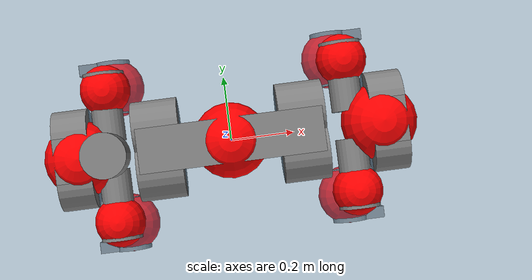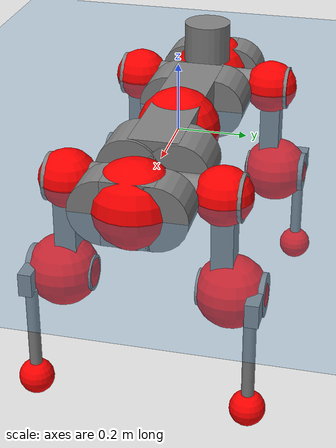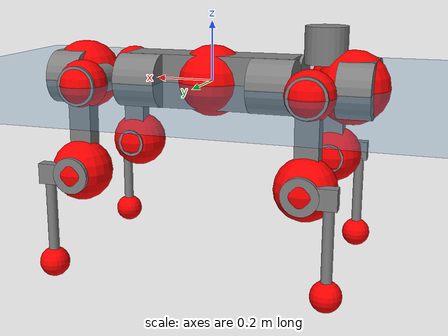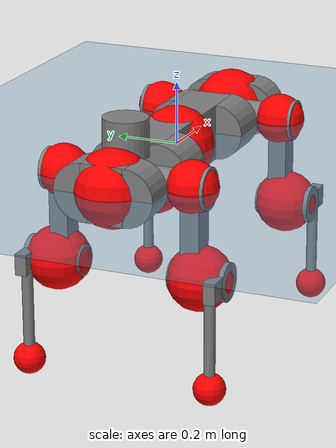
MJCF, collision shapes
<mujoco model="anymal_c">
  <compiler angle="radian" assetdir="assets" balanceinertia="true" inertiafromgeom="false"/>

  <option timestep="0.005" density="1.2" viscosity="2e-05"/>

  <size nkey="1"/>

  <visual>
    <quality shadowsize="8192"/>
    <map shadowclip="0.5"/>
  </visual>

  <default>
    <default class="/">
      <material specular="0" shininess="0.25"/>
      <geom contype="0" conaffinity="0" group="1" solref="-1000 -80"/>
      <site size="0.01 0.005 0.005" group="5"/>
      <general forcelimited="true" forcerange="-80 80" biastype="affine" gainprm="80" biasprm="0 -80 -2"/>
      <default class="anymal_c">
        <joint armature="0.01" damping="0.01" frictionloss="0.1"/>
        <default class="visual">
          <geom type="mesh" group="2"/>
          <default class="visual_zflip"/>
        </default>
        <default class="collision">
          <geom type="cylinder" group="3"/>
          <default class="foot">
            <geom size="0.03 0 0" type="sphere" condim="6" priority="1" friction="0.8 0.02 0.01" solimp="0.015 1 0.03"/>
          </default>
        </default>
      </default>
      <default class="reward_collision_sphere">
        <geom group="5" rgba="1 0 0 1"/>
      </default>
    </default>
  </default>

  <asset>
    <texture type="skybox" colorspace="auto" name="//unnamed_texture_0" builtin="gradient" rgb1="0.95 0.95 0.95" rgb2="0.95 0.95 0.95" width="100" height="600"/>
    <texture type="2d" colorspace="auto" name="texplane" builtin="checker" rgb1="0.345 0.575 0.748" rgb2="0.345 0.575 0.748" markrgb="1 1 1" width="512" height="512"/>
    <texture type="2d" colorspace="linear" name="base" file="base.png"/>
    <texture type="2d" colorspace="linear" name="top_shell" file="top_shell.png"/>
    <texture type="2d" colorspace="linear" name="bottom_shell" file="bottom_shell.png"/>
    <texture type="2d" colorspace="linear" name="remote" file="remote.png"/>
    <texture type="2d" colorspace="linear" name="hatch" file="hatch.png"/>
    <texture type="2d" colorspace="linear" name="handle" file="handle.png"/>
    <texture type="2d" colorspace="linear" name="face" file="face.png"/>
    <texture type="2d" colorspace="linear" name="battery" file="battery.png"/>
    <texture type="2d" colorspace="linear" name="lidar_cage" file="lidar_cage.png"/>
    <texture type="2d" colorspace="linear" name="depth_camera" file="depth_camera.png"/>
    <texture type="2d" colorspace="linear" name="wide_angle_camera" file="wide_angle_camera.png"/>
    <texture type="2d" colorspace="linear" name="lidar" file="lidar.png"/>
    <texture type="2d" colorspace="linear" name="drive" file="drive.png"/>
    <texture type="2d" colorspace="linear" name="hip_l" file="hip_l.png"/>
    <texture type="2d" colorspace="linear" name="shank_l" file="shank_l.png"/>
    <texture type="2d" colorspace="linear" name="foot" file="foot.png"/>
    <texture type="2d" colorspace="linear" name="thigh" file="thigh.png"/>
    <texture type="2d" colorspace="linear" name="shank_r" file="shank_r.png"/>
    <texture type="2d" colorspace="linear" name="hip_r" file="hip_r.png"/>
    <material name="MatPlane" class="/" texture="texplane" texuniform="true" texrepeat="2 2" specular="0.9" shininess="0.5"/>
    <material name="black_plastic" class="/" rgba="0.007 0.007 0.007 1"/>
    <material name="green" class="/" rgba="0.052 0.178 0.033 1"/>
    <material name="red" class="/" rgba="0.178 0.006 0.005 1"/>
    <material name="yellow" class="/" rgba="0.178 0.119 0.006 1"/>
    <material name="lwl" class="/" rgba="0.8 0.8 0.8 1"/>
    <material name="base" class="/" texture="base"/>
    <material name="top_shell" class="/" texture="top_shell"/>
    <material name="bottom_shell" class="/" texture="bottom_shell"/>
    <material name="hip_l" class="/" texture="hip_l"/>
    <material name="thigh" class="/" texture="thigh"/>
    <material name="shank_l" class="/" texture="shank_l"/>
    <material name="foot" class="/" texture="foot"/>
    <material name="hip_r" class="/" texture="hip_r"/>
    <material name="shank" class="/" texture="shank_r"/>
    <material name="hatch" class="/" texture="hatch"/>
    <material name="remote" class="/" texture="remote"/>
    <material name="handle" class="/" texture="handle"/>
    <material name="face" class="/" texture="face"/>
    <material name="depth_camera" class="/" texture="depth_camera"/>
    <material name="wide_angle_camera" class="/" texture="wide_angle_camera"/>
    <material name="battery" class="/" texture="battery"/>
    <material name="lidar_cage" class="/" texture="lidar_cage"/>
    <material name="lidar" class="/" texture="lidar"/>
    <material name="drive" class="/" texture="drive"/>
    <mesh name="base_0" class="/" file="base_0.obj"/>
    <mesh name="base_1" class="/" file="base_1.obj"/>
    <mesh name="base_2" class="/" file="base_2.obj"/>
    <mesh name="base_3" class="/" file="base_3.obj"/>
    <mesh name="base_4" class="/" file="base_4.obj"/>
    <mesh name="base_5" class="/" file="base_5.obj"/>
    <mesh name="top_shell" class="/" file="top_shell.obj"/>
    <mesh name="bottom_shell" class="/" file="bottom_shell.obj"/>
    <mesh name="remote" class="/" file="remote.obj"/>
    <mesh name="handle" class="/" file="handle.obj"/>
    <mesh name="face" class="/" file="face.obj"/>
    <mesh name="wide_angle_camera" class="/" file="wide_angle_camera.obj"/>
    <mesh name="depth_camera" class="/" file="depth_camera.obj"/>
    <mesh name="battery" class="/" file="battery.obj"/>
    <mesh name="lidar_cage" class="/" file="lidar_cage.obj"/>
    <mesh name="lidar" class="/" file="lidar.obj"/>
    <mesh name="drive" class="/" file="drive.obj"/>
    <mesh name="hip_l" class="/" file="hip_l.obj"/>
    <mesh name="thigh" class="/" file="thigh.obj"/>
    <mesh name="shank_l" class="/" file="shank_l.obj"/>
    <mesh name="foot" class="/" file="foot.obj"/>
    <mesh name="hip_r" class="/" file="hip_r.obj"/>
    <mesh name="hatch" class="/" file="hatch.obj"/>
    <mesh name="shank_r" class="/" file="shank_r.obj"/>
  </asset>

  <worldbody>
    <geom name="floor" class="/" size="100 100 0.125" type="plane" group="0" material="MatPlane"/>
    <light name="toplight_shadow" class="/" pos="0 0 5" dir="0.0990148 0.0990148 -0.990148" type="directional" ambient="0.04 0.04 0.04" diffuse="0.55 0.55 0.55" specular="0.12 0.12 0.12"/>
    <light name="toplight_fill" class="/" pos="0 0 5" dir="0.0990148 0.0990148 -0.990148" type="directional" castshadow="false" ambient="0.04 0.04 0.04" diffuse="0.3 0.3 0.3" specular="0.08 0.08 0.08"/>
    <body name="trunk" childclass="anymal_c" pos="-0.00185548 -3.28802e-05 0.000986297" quat="1 -0.000258746 2.6223e-05 0.000296423">
      <inertial pos="0.000345358 -0.000626828 0.0485679" quat="0.500219 0.501669 0.502032 0.496057" mass="19.6265" diaginertia="0.851964 0.54996 0.219484"/>
      <joint name="//unnamed_joint_0" type="free" armature="0" damping="0" frictionloss="0"/>
      <geom name="//unnamed_geom_1" class="visual" material="green" mesh="base_0"/>
      <geom name="//unnamed_geom_2" class="visual" material="yellow" mesh="base_1"/>
      <geom name="//unnamed_geom_3" class="visual" material="red" mesh="base_2"/>
      <geom name="//unnamed_geom_4" class="visual" material="black_plastic" mesh="base_3"/>
      <geom name="//unnamed_geom_5" class="visual" material="lwl" mesh="base_4"/>
      <geom name="//unnamed_geom_6" class="visual" material="base" mesh="base_5"/>
      <geom name="trunk_1" class="collision" size="0.292906 0.0707014 0.0909018" type="box"/>
      <geom name="trunk_2" class="collision" size="0.0909018 0.0732265" pos="0.229961 0.0681855 0" quat="0.707107 0 0.707107 0"/>
      <geom name="trunk_3" class="collision" size="0.0909018 0.0732265" pos="-0.229961 0.0681855 0" quat="0.707107 0 0.707107 0"/>
      <geom name="trunk_4" class="collision" size="0.0909018 0.0732265" pos="0.229961 -0.0681855 0" quat="0.707107 0 0.707107 0"/>
      <geom name="trunk_5" class="collision" size="0.0909018 0.0732265" pos="-0.229961 -0.0681855 0" quat="0.707107 0 0.707107 0"/>
      <geom name="//unnamed_geom_12" class="visual" material="top_shell" mesh="top_shell"/>
      <geom name="//unnamed_geom_13" class="visual" material="bottom_shell" mesh="bottom_shell"/>
      <geom name="//unnamed_geom_14" class="visual" material="remote" mesh="remote"/>
      <geom name="//unnamed_geom_15" class="visual" material="handle" mesh="handle"/>
      <geom name="//unnamed_geom_16" class="visual" pos="0.438248 0 0" quat="1 0 0 0" material="face" mesh="face"/>
      <geom name="trunk_6" class="collision" size="0.0555511 0.0707014 0.0909018" pos="0.496399 0 0" type="box"/>
      <geom name="//unnamed_geom_18" class="collision" size="0.0909018 0.0555511" pos="0.496399 0.0681855 0" quat="0.707107 0 0.707107 0"/>
      <geom name="//unnamed_geom_19" class="collision" size="0.0909018 0.0555511" pos="0.496399 -0.0681855 0" quat="0.707107 0 0.707107 0"/>
      <geom name="//unnamed_geom_20" class="visual" pos="0.488097 0 -0.0287163" quat="0.965926 0 0.258819 0" material="depth_camera" mesh="depth_camera"/>
      <geom name="//unnamed_geom_21" class="visual" pos="0.542391 0 0.0149504" material="wide_angle_camera" mesh="wide_angle_camera"/>
      <geom name="//unnamed_geom_22" class="visual_zflip" pos="-0.438248 0 0" quat="0 0 0 1" material="face" mesh="face"/>
      <geom name="trunk_7" class="collision" size="0.0555511 0.0707014 0.0909018" pos="-0.496399 0 0" quat="0 0 0 1" type="box"/>
      <geom name="//unnamed_geom_24" class="collision" size="0.0909018 0.0555511" pos="-0.496399 -0.0681855 0" quat="0 -0.707107 0 0.707107"/>
      <geom name="//unnamed_geom_25" class="collision" size="0.0909018 0.0555511" pos="-0.496399 0.0681855 0" quat="0 -0.707107 0 0.707107"/>
      <geom name="//unnamed_geom_26" class="visual" pos="-0.488097 0 -0.0287163" quat="0 -0.258819 0 0.965926" material="depth_camera" mesh="depth_camera"/>
      <geom name="//unnamed_geom_27" class="visual_zflip" pos="-0.542391 0 0.0149504" quat="0 0 0 1" material="wide_angle_camera" mesh="wide_angle_camera"/>
      <geom name="//unnamed_geom_28" class="visual" material="battery" mesh="battery"/>
      <geom name="//unnamed_geom_29" class="visual" pos="0 0.0733837 0.0294573" quat="0.683013 -0.183013 0.183013 0.683013" material="depth_camera" mesh="depth_camera"/>
      <geom name="//unnamed_geom_30" class="visual" pos="0 -0.0733837 0.0294573" quat="0.683013 0.183013 0.183013 -0.683013" material="depth_camera" mesh="depth_camera"/>
      <geom name="//unnamed_geom_31" class="visual" pos="-0.384855 0 0.0734037" quat="1 0 0 0" material="lidar_cage" mesh="lidar_cage"/>
      <geom name="trunk_8" class="collision" size="0.0707014 0.0606012" pos="-0.384855 0 0.133325"/>
      <geom name="//unnamed_geom_33" class="visual" pos="-0.384855 -3.26927e-05 0.142014" quat="0.707107 0 0 -0.707107" material="lidar" mesh="lidar"/>
      <geom name="//unnamed_geom_34" class="visual" pos="0.317082 0.101313 -4.24534e-10" quat="0.258819 0.965926 0 0" material="drive" mesh="drive"/>
      <geom name="//unnamed_geom_35" class="visual" pos="0.317082 -0.101313 4.24534e-10" quat="0.258819 -0.965926 0 0" material="drive" mesh="drive"/>
      <geom name="//unnamed_geom_36" class="visual" pos="-0.317082 0.101313 4.24534e-10" quat="0 0 0.965926 -0.258819" material="drive" mesh="drive"/>
      <geom name="//unnamed_geom_37" class="visual" pos="-0.317082 -0.101313 -4.24534e-10" quat="0 0 -0.965926 -0.258819" material="drive" mesh="drive"/>
      <geom name="//unnamed_geom_38" class="visual" pos="0.122646 0 0.0729043" quat="1 0 0 0" material="hatch" mesh="hatch"/>
      <geom name="//unnamed_geom_39" class="reward_collision_sphere" size="0.121202"/>
      <geom name="//unnamed_geom_40" class="reward_collision_sphere" size="0.121202" pos="0.475782 0 0"/>
      <geom name="//unnamed_geom_41" class="reward_collision_sphere" size="0.121202" pos="-0.475782 0 0"/>
      <site name="imu" pos="0.261497 0.00351224 0.0485536" size="0.0101002"/>
      <camera name="track" pos="0 -1.94816 0" quat="0.707107 0.707107 0 0" mode="trackcom"/>
      <camera name="ego_camera" pos="0.475782 0 -0.0399476" quat="-0.5 -0.5 0.5 0.5"/>
      <body name="LF_HIP" pos="0.318365 0.102275 -0.00129023" quat="0.258207 0.966089 0.000617994 -0.000286815">
        <inertial pos="0.0578857 -0.0137386 -0.00735809" quat="-0.127902 0.709854 -0.135215 0.679312" mass="2.88986" diaginertia="0.00781651 0.00428965 0.00328734"/>
        <joint name="LF_HAA" pos="0 0 0" axis="0.999998 0.00133462 -0.00118613" range="-0.722398 0.465113" armature="0.0103508" damping="0.0112199" frictionloss="0.0958729"/>
        <geom name="//unnamed_geom_42" class="visual" pos="0 -2.49734e-05 4.10186e-06" quat="0.258819 -0.965926 0 0" material="hip_l" mesh="hip_l"/>
        <geom name="//unnamed_geom_43" class="visual" pos="0.0633319 -0.0756531 -0.0438604" quat="0.183013 -0.683013 0.683013 0.183013" material="drive" mesh="drive"/>
        <geom name="//unnamed_geom_44" class="collision" size="0.050501 0.0707014" pos="0.0633319 -0.0116498 -0.00689595" quat="-0.353553 -0.612372 0.612372 -0.353553"/>
        <body name="LF_THIGH" pos="0.0632909 -0.0712444 -0.0422589" quat="0.18308 -0.683003 0.682999 0.183032">
          <inertial pos="0.034675 4.58272e-06 -0.243893" quat="0.993051 -0.00564025 -0.0809615 0.0852233" mass="3.18213" diaginertia="0.0398203 0.0261242 0.00421567"/>
          <joint name="LF_HFE" pos="0 0 0" axis="0.999995 -0.00126284 -0.0027812" stiffness="0.0118808" range="-3.16223 3.14637" armature="0.0102736" damping="0" frictionloss="0.0963765"/>
          <geom name="//unnamed_geom_45" class="visual" pos="0.00165564 2.6089e-06 0" quat="0.707107 0 0 -0.707107" material="thigh" mesh="thigh"/>
          <geom name="//unnamed_geom_46" class="collision" size="0.0656513 0.0404008" pos="0.0422917 0 0" quat="0.5 0.5 -0.5 -0.5"/>
          <geom name="//unnamed_geom_47" class="collision" size="0.0378758 0.0303006 0.14273" pos="0.0317188 0 -0.141129" quat="0.707107 0 0 -0.707107" type="box"/>
          <geom name="//unnamed_geom_48" class="visual" pos="0.106047 0 -0.284626" quat="1 0 0 0" material="drive" mesh="drive"/>
          <geom name="//unnamed_geom_49" class="collision" size="0.050501 0.0707014" pos="0.032036 0 -0.284626" quat="0.707107 0 0.707107 0"/>
          <geom name="//unnamed_geom_50" class="reward_collision_sphere" size="0.0808016" pos="0.0264323 0 0"/>
          <body name="LF_SHANK" pos="0.106279 -9.30821e-05 -0.285386" quat="1 -0.000166326 -0.000101313 -5.54271e-05">
            <inertial pos="0.00520353 -0.0604502 -0.080947" quat="0.992413 -0.118931 -0.00164635 -0.0311216" mass="0.601776" diaginertia="0.0135491 0.00800457 0.00111382"/>
            <joint name="LF_KFE" pos="0 0 0" axis="0.99999 0.00307542 -0.00331334" range="-3.14795 3.11891" armature="0.0105427" damping="0.00930711" frictionloss="0.0983663"/>
            <geom name="//unnamed_geom_51" class="visual" pos="0.000539868 0.0028786 0" quat="0.707107 0 0 -0.707107" material="shank_l" mesh="shank_l"/>
            <geom name="LF_kfe_act" class="collision" size="0.0606012 0.0202004" pos="0.0211459 0 0" quat="0.5 0.5 -0.5 -0.5"/>
            <geom name="//unnamed_geom_53" class="collision" size="0.0580752 0.0340882 0.0191904" pos="0.0211459 -0.0560086 0" quat="0.5 0.5 -0.5 -0.5" type="box"/>
            <geom name="//unnamed_geom_54" class="visual" pos="0.0137975 -0.0847426 -0.337527" quat="0.382683 0 0 -0.92388" material="foot" mesh="foot"/>
            <geom name="LF_calf" class="collision" size="0.0176754 0.142667" pos="0.0137977 -0.0856702 -0.168764" quat="0.707107 0 0 -0.707107"/>
            <geom name="LF_foot" class="foot" size="0.0293868" pos="0.0137977 -0.0856702 -0.315057" quat="0.707107 0 0 -0.707107"/>
            <geom name="//unnamed_geom_57" class="reward_collision_sphere" size="0.101002" pos="-0.0528647 0 0"/>
            <geom name="//unnamed_geom_58" class="reward_collision_sphere" size="0.050501" pos="0.0137977 -0.0856702 -0.315057"/>
            <site name="LF_foot" class="foot" pos="0.0137977 -0.0856702 -0.315057" quat="0.707107 0 0 -0.707107" size="0.0101002"/>
          </body>
        </body>
      </body>
      <body name="RF_HIP" pos="0.317387 -0.100547 0.000974516" quat="0.258474 -0.966018 -0.00023622 -0.000249222">
        <inertial pos="0.0607664 0.014537 -0.00848003" quat="0.135493 0.679176 0.127675 0.709972" mass="2.94801" diaginertia="0.00769594 0.00431472 0.00328366"/>
        <joint name="RF_HAA" pos="0 0 0" axis="0.999998 -0.000222129 0.0022217" range="-0.506972 0.715012" armature="0.00907808" damping="0.00977962" frictionloss="0.110678"/>
        <geom name="//unnamed_geom_59" class="visual" pos="0 2.49732e-05 4.10185e-06" quat="0.258819 0.965926 0 0" material="hip_r" mesh="hip_r"/>
        <geom name="//unnamed_geom_60" class="visual" pos="0.0633319 0.0756531 -0.0438604" quat="0.183013 0.683013 0.683013 -0.183013" material="drive" mesh="drive"/>
        <geom name="//unnamed_geom_61" class="collision" size="0.050501 0.0707014" pos="0.0633319 0.0116498 -0.00689595" quat="-0.353553 0.612372 0.612372 0.353553"/>
        <body name="RF_THIGH" pos="0.0641329 0.0704518 -0.0413181" quat="0.183591 0.682628 0.683243 -0.183013">
          <inertial pos="0.0325291 -0.00214013 -0.244556" quat="0.992791 -0.00518486 -0.0786465 0.0902954" mass="3.11458" diaginertia="0.0404403 0.026851 0.00416612"/>
          <joint name="RF_HFE" pos="0 0 0" axis="0.999987 -0.00114409 0.00506293" stiffness="0.00332227" range="-3.12807 3.15644" armature="0.0101812" damping="0.0103895" frictionloss="0.0958923"/>
          <geom name="//unnamed_geom_62" class="visual" pos="0.00165564 2.6089e-06 0" quat="0.707107 0 0 -0.707107" material="thigh" mesh="thigh"/>
          <geom name="//unnamed_geom_63" class="collision" size="0.0656513 0.0404008" pos="0.0422917 0 0" quat="0.5 0.5 0.5 0.5"/>
          <geom name="//unnamed_geom_64" class="collision" size="0.0378758 0.0303006 0.14273" pos="0.0317188 0 -0.141129" quat="0.707107 0 0 0.707107" type="box"/>
          <geom name="//unnamed_geom_65" class="visual" pos="0.106047 0 -0.284626" quat="1 0 0 0" material="drive" mesh="drive"/>
          <geom name="//unnamed_geom_66" class="collision" size="0.050501 0.0707014" pos="0.032036 0 -0.284626" quat="0.707107 0 0.707107 0"/>
          <geom name="//unnamed_geom_67" class="reward_collision_sphere" size="0.0808016" pos="0.0264323 0 0"/>
          <body name="RF_SHANK" pos="0.105232 -0.000203679 -0.284156" quat="1 9.52673e-05 -0.000140491 5.9696e-05">
            <inertial pos="0.00516129 0.0598484 -0.0799377" quat="0.993199 0.113464 -0.00137376 0.0260877" mass="0.609772" diaginertia="0.0137625 0.00817264 0.00112276"/>
            <joint name="RF_KFE" pos="0 0 0" axis="0.999965 -0.00737666 0.00398621" range="-3.14534 3.12641" armature="0.0102142" damping="0.0048813" frictionloss="0.0994463"/>
            <geom name="//unnamed_geom_68" class="visual" pos="0.000539865 -0.0028786 0" quat="0.707107 0 0 0.707107" material="shank" mesh="shank_r"/>
            <geom name="RF_kfe_act" class="collision" size="0.0606012 0.0202004" pos="0.0211459 0 0" quat="0.5 0.5 0.5 0.5"/>
            <geom name="//unnamed_geom_70" class="collision" size="0.0580752 0.0340882 0.0191904" pos="0.0211459 0.0560086 0" quat="0.5 0.5 0.5 0.5" type="box"/>
            <geom name="//unnamed_geom_71" class="visual" pos="0.0137978 0.0847426 -0.337527" quat="0.382683 0 0 0.92388" material="foot" mesh="foot"/>
            <geom name="RF_calf" class="collision" size="0.0176754 0.142667" pos="0.0137977 0.0856702 -0.168764" quat="0.707107 0 0 0.707107"/>
            <geom name="RF_foot" class="foot" size="0.0301306" pos="0.0137977 0.0856702 -0.315057" quat="0.707107 0 0 0.707107"/>
            <geom name="//unnamed_geom_74" class="reward_collision_sphere" size="0.101002" pos="-0.0528647 0 0"/>
            <geom name="//unnamed_geom_75" class="reward_collision_sphere" size="0.050501" pos="0.0137977 0.0856702 -0.315057"/>
            <site name="RF_foot" class="foot" pos="0.0137977 0.0856702 -0.315057" quat="0.707107 0 0 0.707107" size="0.0101002"/>
          </body>
        </body>
      </body>
      <body name="LH_HIP" pos="-0.317012 0.100961 6.03313e-05" quat="-0.000391637 -0.000612758 0.96568 -0.259734">
        <inertial pos="0.0619489 0.0147971 -0.00788253" quat="0.135229 0.679026 0.127932 0.71012" mass="2.86042" diaginertia="0.00773279 0.00432591 0.00328143"/>
        <joint name="LH_HAA" pos="0 0 0" axis="1 7.03401e-05 0.000312266" range="-0.497123 0.732581" armature="0.0100729" damping="0.00930805" frictionloss="0.0961393"/>
        <geom name="//unnamed_geom_76" class="visual" pos="0 2.49732e-05 4.10185e-06" quat="-0.258819 -0.965926 0 0" material="hip_r" mesh="hip_r"/>
        <geom name="//unnamed_geom_77" class="visual" pos="0.0633319 0.0756531 -0.0438604" quat="0.183013 0.683013 0.683013 -0.183013" material="drive" mesh="drive"/>
        <geom name="//unnamed_geom_78" class="collision" size="0.050501 0.0707014" pos="0.0633319 0.0116498 -0.00689595" quat="-0.353553 0.612372 0.612372 0.353553"/>
        <body name="LH_THIGH" pos="0.0608285 0.0696644 -0.0419784" quat="0.183447 0.682783 0.683209 -0.182701">
          <inertial pos="0.0329193 -0.000371619 -0.245543" quat="0.992693 0.000529099 -0.0792777 0.0909671" mass="3.12104" diaginertia="0.03965 0.0259904 0.00411029"/>
          <joint name="LH_HFE" pos="0 0 0" axis="0.999998 -0.00215153 -0.000516964" stiffness="3.18727e-06" range="-3.15079 3.14459" armature="0.0101701" damping="0" frictionloss="0.105494"/>
          <geom name="//unnamed_geom_79" class="visual" pos="0.00165564 2.6089e-06 0" quat="0.707107 0 0 -0.707107" material="thigh" mesh="thigh"/>
          <geom name="//unnamed_geom_80" class="collision" size="0.0656513 0.0404008" pos="0.0422917 0 0" quat="0.5 0.5 -0.5 -0.5"/>
          <geom name="//unnamed_geom_81" class="collision" size="0.0378758 0.0303006 0.14273" pos="0.0317188 0 -0.141129" quat="0.707107 0 0 -0.707107" type="box"/>
          <geom name="//unnamed_geom_82" class="visual" pos="0.106047 0 -0.284626" quat="1 0 0 0" material="drive" mesh="drive"/>
          <geom name="//unnamed_geom_83" class="collision" size="0.050501 0.0707014" pos="0.032036 0 -0.284626" quat="0.707107 0 0.707107 0"/>
          <geom name="//unnamed_geom_84" class="reward_collision_sphere" size="0.0808016" pos="0.0264323 0 0"/>
          <body name="LH_SHANK" pos="0.104887 -0.000140999 -0.285578" quat="1 6.09314e-05 -5.0342e-05 -5.67381e-05">
            <inertial pos="0.00576733 0.0597035 -0.0812171" quat="0.992925 0.115914 -0.000655048 0.0257418" mass="0.609205" diaginertia="0.0134051 0.00808644 0.00111216"/>
            <joint name="LH_KFE" pos="0 0 0" axis="0.999991 0.00028624 -0.00422858" range="-3.13379 3.13902" armature="0.0104958" damping="0" frictionloss="0.102672"/>
            <geom name="//unnamed_geom_85" class="visual" pos="0.000539865 -0.0028786 0" quat="-0.707107 0 0 -0.707107" material="shank" mesh="shank_r"/>
            <geom name="LH_kfe_act" class="collision" size="0.0606012 0.0202004" pos="0.0211459 0 0" quat="0.5 0.5 -0.5 -0.5"/>
            <geom name="//unnamed_geom_87" class="collision" size="0.0580752 0.0340882 0.0191904" pos="0.0211459 0.0560086 0" quat="0.5 0.5 -0.5 -0.5" type="box"/>
            <geom name="//unnamed_geom_88" class="visual" pos="0.0137978 0.0847426 -0.337527" quat="-0.382683 0 0 -0.92388" material="foot" mesh="foot"/>
            <geom name="LH_calf" class="collision" size="0.0176754 0.142667" pos="0.0137977 0.0856702 -0.168764" quat="0.707107 0 0 -0.707107"/>
            <geom name="LH_foot" class="foot" size="0.0313798" pos="0.0137977 0.0856702 -0.315057" quat="0.707107 0 0 -0.707107"/>
            <geom name="//unnamed_geom_91" class="reward_collision_sphere" size="0.101002" pos="-0.0528647 0 0"/>
            <geom name="//unnamed_geom_92" class="reward_collision_sphere" size="0.050501" pos="0.0137977 0.0856702 -0.315057"/>
            <site name="LH_foot" class="foot" pos="0.0137977 0.0856702 -0.315057" quat="0.707107 0 0 -0.707107" size="0.0101002"/>
          </body>
        </body>
      </body>
      <body name="RH_HIP" pos="-0.317301 -0.103288 0.00108238" quat="1.57433e-05 -1.49473e-05 -0.965922 -0.258834">
        <inertial pos="0.0599457 -0.0143745 -0.00850498" quat="-0.120721 0.709797 -0.136634 0.680401" mass="2.87971" diaginertia="0.00770759 0.00431003 0.00332314"/>
        <joint name="RH_HAA" pos="0 0 0" axis="0.999999 -9.53075e-05 -0.00102314" range="-0.714855 0.488999" armature="0.0110626" damping="0.0215473" frictionloss="0.0949571"/>
        <geom name="//unnamed_geom_93" class="visual" pos="0 -2.49734e-05 4.10186e-06" quat="-0.258819 0.965926 0 0" material="hip_l" mesh="hip_l"/>
        <geom name="//unnamed_geom_94" class="visual" pos="0.0633319 -0.0756531 -0.0438604" quat="-0.183013 0.683013 -0.683013 -0.183013" material="drive" mesh="drive"/>
        <geom name="//unnamed_geom_95" class="collision" size="0.050501 0.0707014" pos="0.0633319 -0.0116498 -0.00689595" quat="0.353553 0.612372 -0.612372 0.353553"/>
        <body name="RH_THIGH" pos="0.0637965 -0.0709288 -0.0431238" quat="-0.183209 0.68324 -0.682674 -0.183231">
          <inertial pos="0.0329107 0.000831446 -0.245035" quat="0.993197 -0.00613691 -0.0803009 0.0841106" mass="3.23959" diaginertia="0.0409526 0.0264781 0.00412837"/>
          <joint name="RH_HFE" pos="0 0 0" axis="0.999993 0.00378732 -0.000339691" range="-3.17048 3.13661" armature="0.00968691" damping="0.00811117" frictionloss="0.103075"/>
          <geom name="//unnamed_geom_96" class="visual" pos="0.00165564 2.6089e-06 0" quat="0.707107 0 0 -0.707107" material="thigh" mesh="thigh"/>
          <geom name="//unnamed_geom_97" class="collision" size="0.0656513 0.0404008" pos="0.0422917 0 0" quat="0.5 0.5 0.5 0.5"/>
          <geom name="//unnamed_geom_98" class="collision" size="0.0378758 0.0303006 0.14273" pos="0.0317188 0 -0.141129" quat="0.707107 0 0 0.707107" type="box"/>
          <geom name="//unnamed_geom_99" class="visual" pos="0.106047 0 -0.284626" quat="1 0 0 0" material="drive" mesh="drive"/>
          <geom name="//unnamed_geom_100" class="collision" size="0.050501 0.0707014" pos="0.032036 0 -0.284626" quat="0.707107 0 0.707107 0"/>
          <geom name="//unnamed_geom_101" class="reward_collision_sphere" size="0.0808016" pos="0.0264323 0 0"/>
          <body name="RH_SHANK" pos="0.103402 0.000581814 -0.284477" quat="1 -2.16319e-06 2.79849e-06 7.69888e-06">
            <inertial pos="0.00806678 -0.0596552 -0.0813338" quat="0.992709 -0.116689 -0.00241578 -0.0301087" mass="0.606932" diaginertia="0.0129743 0.00788229 0.00108223"/>
            <joint name="RH_KFE" pos="0 0 0" axis="1 -0.000210642 0.000181235" stiffness="0.000315844" range="-3.11532 3.17994" armature="0.00978694" damping="0.0102363" frictionloss="0.0985037"/>
            <geom name="//unnamed_geom_102" class="visual" pos="0.000539868 0.0028786 0" quat="0.707107 0 0 -0.707107" material="shank_l" mesh="shank_l"/>
            <geom name="RH_kfe_act" class="collision" size="0.0606012 0.0202004" pos="0.0211459 0 0" quat="0.5 0.5 0.5 0.5"/>
            <geom name="//unnamed_geom_104" class="collision" size="0.0580752 0.0340882 0.0191904" pos="0.0211459 -0.0560086 0" quat="0.5 0.5 0.5 0.5" type="box"/>
            <geom name="//unnamed_geom_105" class="visual" pos="0.0137975 -0.0847426 -0.337527" quat="0.382683 0 0 -0.92388" material="foot" mesh="foot"/>
            <geom name="RH_calf" class="collision" size="0.0176754 0.142667" pos="0.0137977 -0.0856702 -0.168764" quat="0.707107 0 0 0.707107"/>
            <geom name="RH_foot" class="foot" size="0.0292502" pos="0.0137977 -0.0856702 -0.315057" quat="0.707107 0 0 0.707107"/>
            <geom name="//unnamed_geom_108" class="reward_collision_sphere" size="0.101002" pos="-0.0528647 0 0"/>
            <geom name="//unnamed_geom_109" class="reward_collision_sphere" size="0.050501" pos="0.0137977 -0.0856702 -0.315057"/>
            <site name="RH_foot" class="foot" pos="0.0137977 -0.0856702 -0.315057" quat="0.707107 0 0 0.707107" size="0.0101002"/>
          </body>
        </body>
      </body>
    </body>
  </worldbody>

  <contact>
    <pair class="/" geom1="floor" geom2="LF_foot" name="//unnamed_contact_0"/>
    <pair class="/" geom1="floor" geom2="RF_foot" name="//unnamed_contact_1"/>
    <pair class="/" geom1="floor" geom2="LH_foot" name="//unnamed_contact_2"/>
    <pair class="/" geom1="floor" geom2="RH_foot" name="//unnamed_contact_3"/>
  </contact>

  <actuator>
    <general name="LF_HAA" class="/" joint="LF_HAA" forcerange="-82.0627 82.0627" gainprm="81.2176" biasprm="0 -81.2176 -1.90432"/>
    <general name="LF_HFE" class="/" joint="LF_HFE" forcerange="-83.6046 83.6046" gainprm="81.2176" biasprm="0 -81.2176 -1.90432"/>
    <general name="LF_KFE" class="/" joint="LF_KFE" forcerange="-80.6506 80.6506" gainprm="81.2176" biasprm="0 -81.2176 -1.90432"/>
    <general name="RF_HAA" class="/" joint="RF_HAA" forcerange="-88.1525 88.1525" gainprm="81.2176" biasprm="0 -81.2176 -1.90432"/>
    <general name="RF_HFE" class="/" joint="RF_HFE" forcerange="-82.84 82.84" gainprm="81.2176" biasprm="0 -81.2176 -1.90432"/>
    <general name="RF_KFE" class="/" joint="RF_KFE" forcerange="-80.1584 80.1584" gainprm="81.2176" biasprm="0 -81.2176 -1.90432"/>
    <general name="LH_HAA" class="/" joint="LH_HAA" forcerange="-80.5463 80.5463" gainprm="81.2176" biasprm="0 -81.2176 -1.90432"/>
    <general name="LH_HFE" class="/" joint="LH_HFE" forcerange="-80.1602 80.1602" gainprm="81.2176" biasprm="0 -81.2176 -1.90432"/>
    <general name="LH_KFE" class="/" joint="LH_KFE" forcerange="-82.9211 82.9211" gainprm="81.2176" biasprm="0 -81.2176 -1.90432"/>
    <general name="RH_HAA" class="/" joint="RH_HAA" forcerange="-82.7256 82.7256" gainprm="81.2176" biasprm="0 -81.2176 -1.90432"/>
    <general name="RH_HFE" class="/" joint="RH_HFE" forcerange="-82.8232 82.8232" gainprm="81.2176" biasprm="0 -81.2176 -1.90432"/>
    <general name="RH_KFE" class="/" joint="RH_KFE" forcerange="-85.6829 85.6829" gainprm="81.2176" biasprm="0 -81.2176 -1.90432"/>
  </actuator>

  <sensor>
    <gyro site="imu" name="imu_angular_velocity"/>
    <velocimeter site="imu" name="imu_linear_velocity"/>
    <framelinvel objtype="site" objname="LF_foot" name="LF_foot_global_linear_velocity"/>
    <framelinvel objtype="site" objname="RF_foot" name="RF_foot_global_linear_velocity"/>
    <framelinvel objtype="site" objname="LH_foot" name="LH_foot_global_linear_velocity"/>
    <framelinvel objtype="site" objname="RH_foot" name="RH_foot_global_linear_velocity"/>
  </sensor>

  <keyframe>
    <key name="home" qpos="0 0 0.55 1 0 0 0 0 0.4 -0.8 0 -0.4 0.8 0 -0.4 0.8 0 0.4 -0.8"/>
  </keyframe>
</mujoco>
